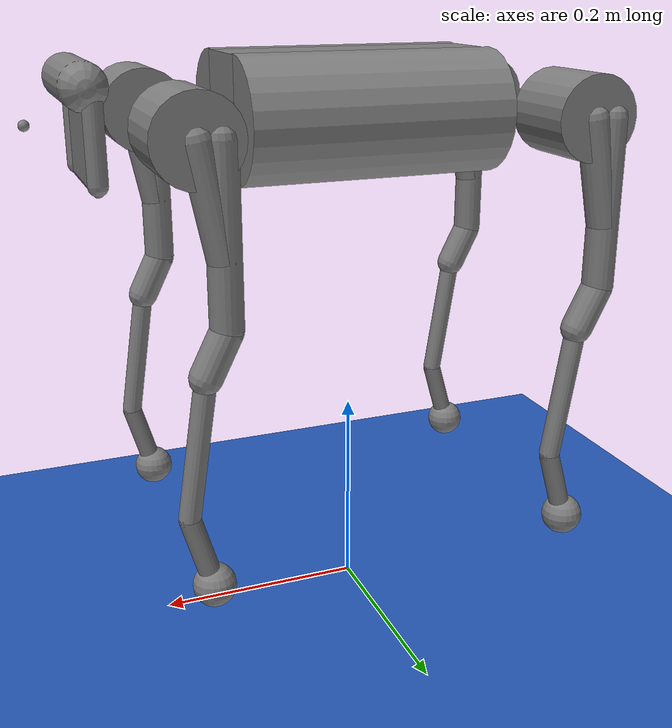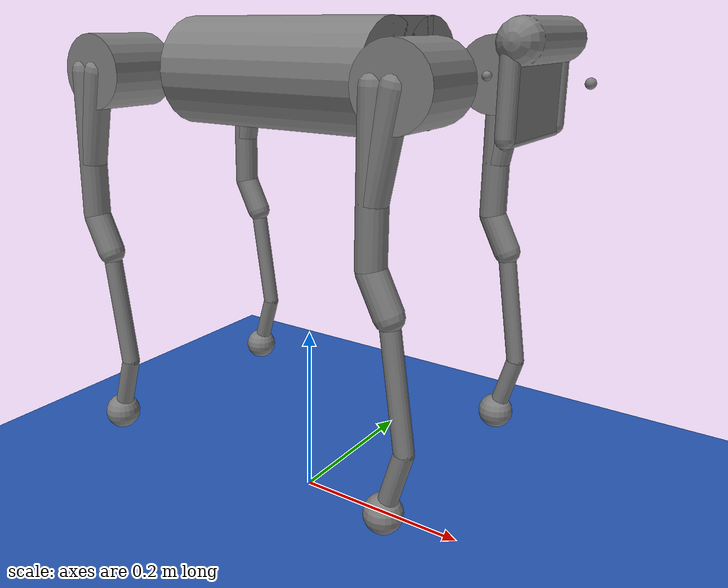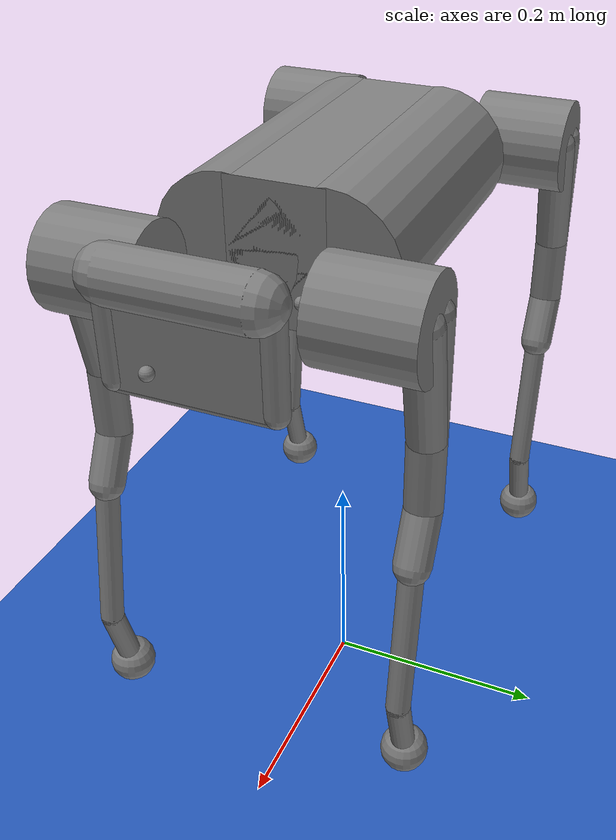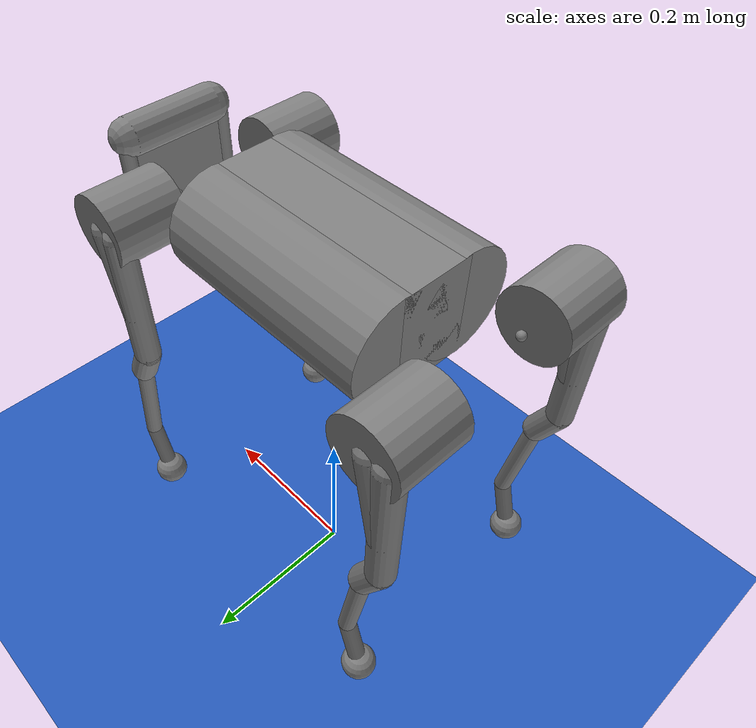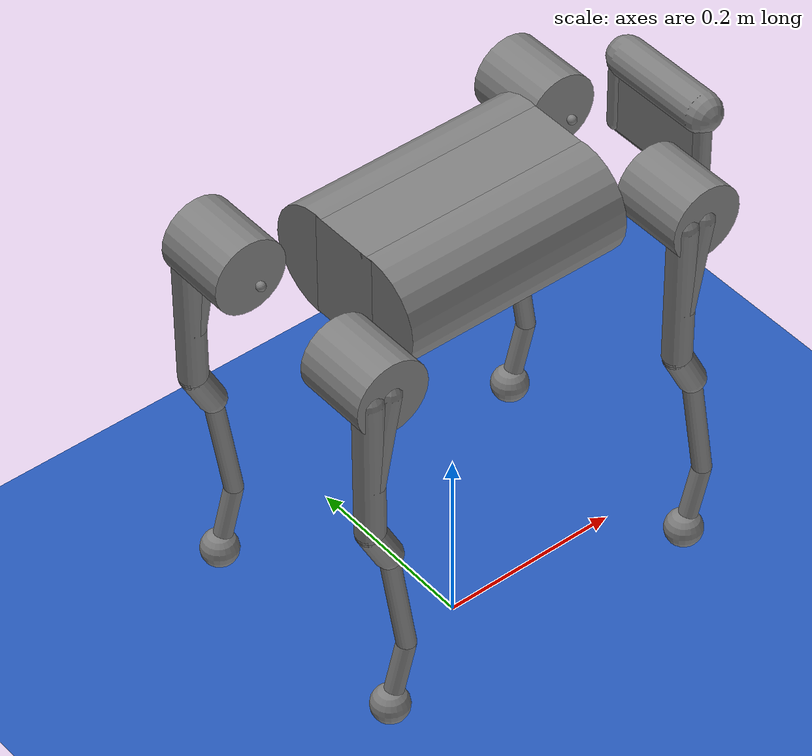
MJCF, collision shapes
<mujoco model="A1_Quadruped">
  <include file="../../object/common.xml"/>

  <size memory="1M"/>

  <visual>
    <headlight diffuse="0.6 0.6 0.6"  ambient="0.3 0.3 0.3" specular="0 0 0"/>
    <global azimuth="-90"/>
  </visual>

  <statistic extent="1" center="0 0 .3"/>

  <worldbody>
    <light pos="0 0 1.5" dir="0 0 -1" diffuse="0.5 0.5 0.5" specular="0.3 0.3 0.3"
      directional="true" castshadow="false"/>
    <geom name="floor" size="0 0 0.1" pos="0 0 0" type="plane" material="blue_grid"/>
  </worldbody>

  <default>
    <default class="torque">
      <general gainprm="40" ctrllimited="true" ctrlrange="-1 1"/>
    </default>
    <default class="task">
      <site rgba="1 0 0 1" size=".02" group="5"/>
      <default class="flight">
        <site rgba="1 .3 .3 1" size="0.019" group="5"/>
      </default>
      <default class="stance">
        <site rgba=".3 1 .3 1" size=".018" group="4"/>
      </default>
    </default>
    <default class="prop">
      <geom type="box" rgba="0 0.4 1 1"/>
    </default>
  </default>

  <include file="A1_Motion.xml" />

  <actuator>
    <general class="torque" name="FR_hip" joint="FR_hip_joint"/>
    <general class="torque" name="FR_thigh" joint="FR_thigh_joint"/>
    <general class="torque" name="FR_calf" joint="FR_calf_joint"/>
    <general class="torque" name="FL_hip" joint="FL_hip_joint"/>
    <general class="torque" name="FL_thigh" joint="FL_thigh_joint"/>
    <general class="torque" name="FL_calf" joint="FL_calf_joint"/>
    <general class="torque" name="RR_hip" joint="RR_hip_joint"/>
    <general class="torque" name="RR_thigh" joint="RR_thigh_joint"/>
    <general class="torque" name="RR_calf" joint="RR_calf_joint"/>
    <general class="torque" name="RL_hip" joint="RL_hip_joint"/>
    <general class="torque" name="RL_thigh" joint="RL_thigh_joint"/>
    <general class="torque" name="RL_calf" joint="RL_calf_joint"/>
  </actuator>

  <sensor>
    <user name="Qpos" dim="12" user="0 0 0 0 0 0 0 0 0 0 0 0" />
    <user name="FootHeight" dim="4" user="0 0 0 0" />
    <user name="Height" dim="1" user="0" />
    <user name="Position" dim="3" user="0 0 0" />
    <user name="Heading" dim="2" />
    <user name="YPR" dim="3" user="0 0 0" />
    <user name="Balance" dim="2"/>
    <user name="Effort" dim="12"/>
    <framepos      name="trace0" objtype="site" objname="head"/>
    <subtreecom    name="torso_subtreecom" body="trunk"/>
    <subtreelinvel name="torso_subtreelinvel" body="trunk"/>
  </sensor>

  <keyframe>
    <key name="home"
          qpos="0 0 0.26
                1 0 0 0
                0 0 0
                0 0 0
                0 0 0
                0 0 0"/>
    <key name="crouch"
         qpos="-0.0501827 0.00107117 0.143925
               1 0 0 0
               0 0 -0.5
               0 0 -0.5
               0 0 -0.5
               0 0 -0.5"/>
  </keyframe>
</mujoco>

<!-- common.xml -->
<mujoco>

  <visual>
    <headlight ambient=".4 .4 .4" diffuse=".8 .8 .8" specular="0.1 0.1 0.1"/>
    <map znear=".01"/>
    <quality shadowsize="2048"/>
    <global elevation="-15"/>
  </visual>

  <asset>
    <texture name="blue_grid" type="2d" builtin="checker" rgb1=".02 .14 .44" rgb2=".27 .55 1" width="300" height="300" mark="edge" markrgb="1 1 1"/>
    <material name="blue_grid" texture="blue_grid" texrepeat="1 1" texuniform="true" reflectance=".2"/>

    <texture name="grey_grid" type="2d" builtin="checker" rgb1=".26 .26 .26" rgb2=".6 .6 .6" width="300" height="300" mark="edge" markrgb="1 1 1"/>
    <material name="grey_grid" texture="blue_grid" texrepeat="1 1" texuniform="true" reflectance=".2"/>
    <texture name="skybox" type="skybox" builtin="gradient" rgb1="1 1 1" rgb2="1 1 1" width="800" height="800"/>

    <material name="self" rgba=".7 .5 .3 1"/>
    <material name="self_default" rgba=".7 .5 .3 1"/>
    <material name="self_highlight" rgba="0 .5 .3 1"/>
    <material name="effector" rgba=".7 .4 .2 1"/>
    <material name="effector_default" rgba=".7 .4 .2 1"/>
    <material name="effector_highlight" rgba="0 .5 .3 1"/>
    <material name="decoration" rgba=".2 .6 .3 1"/>
    <material name="eye" rgba="0 .2 1 1"/>
    <material name="target" rgba=".6 .3 .3 1"/>
    <material name="target_default" rgba=".6 .3 .3 1"/>
    <material name="target_highlight" rgba=".6 .3 .3 .4"/>
    <material name="site" rgba=".5 .5 .5 .3"/>
  </asset>
</mujoco>

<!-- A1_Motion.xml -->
<mujoco model="Unitree A1">
  <compiler angle="radian" meshdir="assets" texturedir="assets"/>

  <option cone="elliptic" impratio="10"/>

  <default>
    <default class="a1">
      <geom friction="0.6" margin="0.001" condim="1"/>
      <joint axis="0 1 0" damping="2" armature="0.01" frictionloss="0.2" limited="true"/>
      <position kp="50" ctrllimited="true" forcelimited="true" forcerange="-33.5 33.5"/>
      <default class="abduction">
        <joint axis="1 0 0" damping="1" range="-0.802851 0.802851"/>
        <position ctrlrange="-0.802851 0.802851"/>
      </default>
      <default class="hip">
        <joint range="-1.9472 3.28879" ref="-0.9"/>
        <position ctrlrange="-1.9472 3.28879"/>
      </default>
      <default class="knee">
        <joint range="-0.89653 0.883702" ref="1.8"/>
        <position ctrlrange="-0.89653 0.883702"/>
      </default>
      <default class="visual">
        <geom type="mesh" contype="0" conaffinity="0" group="2" material="dark"/>
      </default>
      <default class="collision">
        <geom group="3" type="capsule"/>
        <default class="hip_left">
          <geom size="0.04 0.04" quat="1 1 0 0" type="cylinder" pos="0 0.055 0"/>
        </default>
        <default class="hip_right">
          <geom size="0.04 0.04" quat="1 1 0 0" type="cylinder" pos="0 -0.055 0"/>
        </default>
        <default class="thigh1">
          <geom size="0.015" fromto="-0.02 0 0 -0.02 0 -0.16"/>
        </default>
        <default class="thigh2">
          <geom size="0.015" fromto="0 0 0 -0.02 0 -0.1"/>
        </default>
        <default class="thigh3">
          <geom size="0.015" fromto="-0.02 0 -0.16 0 0 -0.2"/>
        </default>
        <default class="calf1">
          <geom size="0.01" fromto="0 0 0 0.02 0 -0.13"/>
        </default>
        <default class="calf2">
          <geom size="0.01" fromto="0.02 0 -0.13 0 0 -0.2"/>
        </default>
        <default class="foot">
          <geom type="sphere" size="0.02" pos="0 0 -0.2" priority="1" solimp="0.015 1 0.031"
              condim="6" friction="0.8 0.02 0.01"/>
        </default>
      </default>
    </default>
  </default>

  <asset>
    <material name="dark" specular="0" shininess="0.25" rgba="0.2 0.2 0.2 1"/>
    <texture type="2d" name="trunk_A1" file="trunk_A1.png"/>
    <material name="carbonfibre" texture="trunk_A1" specular="0" shininess="0.25"/>

    <mesh class="a1" file="calf.obj"/>
    <mesh class="a1" file="hip.obj"/>
    <mesh class="a1" file="thigh.obj"/>
    <mesh class="a1" file="thigh_mirror.obj"/>
    <mesh class="a1" file="trunk.obj"/>
  </asset>

  <worldbody>
    <body name="trunk" pos="0.0 0.0 0.5" quat="1 0 0 0" childclass="a1">
      <light pos="0 0 5" mode="trackcom" diffuse="0.8 0.8 0.8"/>
      <site name="trunk_site"/>
      <site name="head" pos=".3 0 0"/>
      <freejoint name="trunk"/>
      <inertial mass="4.713" pos="0 0.0041 -0.0005"
          fullinertia="0.0158533 0.0377999 0.0456542 -3.66e-05 -6.11e-05 -2.75e-05"/>
      <geom class="visual" mesh="trunk" material="carbonfibre"/>
      <geom class="collision" size="0.125 0.04 0.057" type="box"/>
      <geom class="collision" quat="1 0 1 0" pos="0 -0.04 0" size="0.058 0.125" type="cylinder"/>
      <geom class="collision" quat="1 0 1 0" pos="0 +0.04 0" size="0.058 0.125" type="cylinder"/>
      <geom class="collision" pos="0.25 0 0" size="0.005 0.06 0.05" type="box"/>
      <geom class="collision" pos="0.25 0.06 -0.01" size="0.009 0.035"/>
      <geom class="collision" pos="0.25 -0.06 -0.01" size="0.009 0.035"/>
      <geom class="collision" pos="0.25 0 -0.05" size="0.005 0.06" quat="1 1 0 0"/>
      <geom class="collision" pos="0.255 0 0.0355" size="0.021 0.052" quat="1 1 0 0"/>
      <body name="FR_hip" pos="0.183 -0.047 0">
        <site name="FR_hip_site"/>
        <inertial mass="0.696" pos="-0.003311 -0.000635 3.1e-05"
            quat="0.507528 0.506268 0.491507 0.494499"
            diaginertia="0.000807752 0.00055293 0.000468983"/>
        <joint class="abduction" name="FR_hip_joint"/>
        <geom class="visual" mesh="hip" quat="0 1 0 0"/>
        <geom class="hip_right"/>
        <body name="FR_thigh" pos="0 -0.08505 0">
          <site name="FR_thigh_site"/>
          <inertial mass="1.013" pos="-0.003237 0.022327 -0.027326"
              quat="0.999125 -0.00256393 -0.0409531 -0.00806091"
              diaginertia="0.00555739 0.00513936 0.00133944"/>
          <joint class="hip" name="FR_thigh_joint"/>
          <geom class="visual" mesh="thigh_mirror"/>
          <geom class="thigh1"/>
          <geom class="thigh2"/>
          <geom class="thigh3"/>
          <body name="FR_calf" pos="0 0 -0.2">
            <site name="FR_calf_site"/>
            <inertial mass="0.226" pos="0.00472659 0 -0.131975"
                quat="0.706886 0.017653 0.017653 0.706886"
                diaginertia="0.00340344 0.00339393 3.54834e-05"/>
            <joint class="knee" name="FR_calf_joint"/>
            <geom class="visual" mesh="calf"/>
            <geom class="calf1"/>
            <geom name="FR_foot_collision" class="calf2"/>
            <geom name="FR_foot" class="foot"/>
            <site name="FR_foot_site" pos="0 0 -0.2" type="sphere" size=".020"/>
          </body>
        </body>
      </body>
      <body name="FL_hip" pos="0.183 0.047 0">
        <site name="FL_hip_site"/>
        <inertial mass="0.696" pos="-0.003311 0.000635 3.1e-05"
            quat="0.494499 0.491507 0.506268 0.507528"
            diaginertia="0.000807752 0.00055293 0.000468983"/>
        <joint class="abduction" name="FL_hip_joint"/>
        <geom class="visual" mesh="hip"/>
        <geom class="hip_left"/>
        <geom class="collision" size="0.04 0.04" pos="0 0.055 0" quat="1 1 0 0" type="cylinder"/>
        <body name="FL_thigh" pos="0 0.08505 0">
          <site name="FL_thigh_site"/>
          <inertial mass="1.013" pos="-0.003237 -0.022327 -0.027326"
              quat="0.999125 0.00256393 -0.0409531 0.00806091"
              diaginertia="0.00555739 0.00513936 0.00133944"/>
          <joint class="hip" name="FL_thigh_joint"/>
          <geom class="visual" mesh="thigh"/>
          <geom class="thigh1"/>
          <geom class="thigh2"/>
          <geom class="thigh3"/>
          <body name="FL_calf" pos="0 0 -0.2">
            <site name="FL_calf_site"/>
            <inertial mass="0.226" pos="0.00472659 0 -0.131975"
                quat="0.706886 0.017653 0.017653 0.706886"
                diaginertia="0.00340344 0.00339393 3.54834e-05"/>
            <joint class="knee" name="FL_calf_joint"/>
            <geom class="visual" mesh="calf"/>
            <geom class="calf1"/>
            <geom name="FL_foot_collision" class="calf2"/>
            <geom name="FL_foot" class="foot"/>
            <site name="FL_foot_site" pos="0 0 -0.2" type="sphere" size=".020"/>
          </body>
        </body>
      </body>
      <body name="RR_hip" pos="-0.183 -0.047 0">
        <site name="RR_hip_site"/>
        <inertial mass="0.696" pos="0.003311 -0.000635 3.1e-05"
            quat="0.491507 0.494499 0.507528 0.506268"
            diaginertia="0.000807752 0.00055293 0.000468983"/>
        <joint class="abduction" name="RR_hip_joint"/>
        <geom class="visual" quat="0 0 0 -1" mesh="hip"/>
        <geom class="hip_right"/>
        <body name="RR_thigh" pos="0 -0.08505 0">
          <site name="RR_thigh_site"/>
          <inertial mass="1.013" pos="-0.003237 0.022327 -0.027326"
              quat="0.999125 -0.00256393 -0.0409531 -0.00806091"
              diaginertia="0.00555739 0.00513936 0.00133944"/>
          <joint class="hip" name="RR_thigh_joint"/>
          <geom class="visual" mesh="thigh_mirror"/>
          <geom class="thigh1"/>
          <geom class="thigh2"/>
          <geom class="thigh3"/>
          <body name="RR_calf" pos="0 0 -0.2">
            <site name="RR_calf_site"/>
            <inertial mass="0.226" pos="0.00472659 0 -0.131975"
                quat="0.706886 0.017653 0.017653 0.706886"
                diaginertia="0.00340344 0.00339393 3.54834e-05"/>
            <joint class="knee" name="RR_calf_joint"/>
            <geom class="visual" mesh="calf"/>
            <geom class="calf1"/>
            <geom name="RR_foot_collision" class="calf2"/>
            <geom name="RR_foot" class="foot"/>
            <site name="RR_foot_site" pos="0 0 -0.2" type="sphere" size=".020"/>
          </body>
        </body>
      </body>
      <body name="RL_hip" pos="-0.183 0.047 0">
        <site name="RL_hip_site"/>
        <inertial mass="0.696" pos="0.003311 0.000635 3.1e-05"
            quat="0.506268 0.507528 0.494499 0.491507"
            diaginertia="0.000807752 0.00055293 0.000468983"/>
        <joint class="abduction" name="RL_hip_joint"/>
        <geom class="visual" quat="0 0 1 0" mesh="hip"/>
        <geom class="hip_left"/>
        <body name="RL_thigh" pos="0 0.08505 0">
          <site name="RL_thigh_site"/>
          <inertial mass="1.013" pos="-0.003237 -0.022327 -0.027326"
              quat="0.999125 0.00256393 -0.0409531 0.00806091"
              diaginertia="0.00555739 0.00513936 0.00133944"/>
          <joint class="hip" name="RL_thigh_joint"/>
          <geom class="visual" mesh="thigh"/>
          <geom class="thigh1"/>
          <geom class="thigh2"/>
          <geom class="thigh3"/>
          <body name="RL_calf" pos="0 0 -0.2">
            <site name="RL_calf_site"/>
            <inertial mass="0.226" pos="0.00472659 0 -0.131975"
                quat="0.706886 0.017653 0.017653 0.706886"
                diaginertia="0.00340344 0.00339393 3.54834e-05"/>
            <joint class="knee" name="RL_calf_joint"/>
            <geom class="visual" mesh="calf"/>
            <geom class="calf1"/>
            <geom name="RL_foot_collision" class="calf2"/>
            <geom name="RL_foot" class="foot"/>
            <site name="RL_foot_site" pos="0 0 -0.2" type="sphere" size=".020"/>
          </body>
        </body>
      </body>
    </body>
  </worldbody>
</mujoco>
